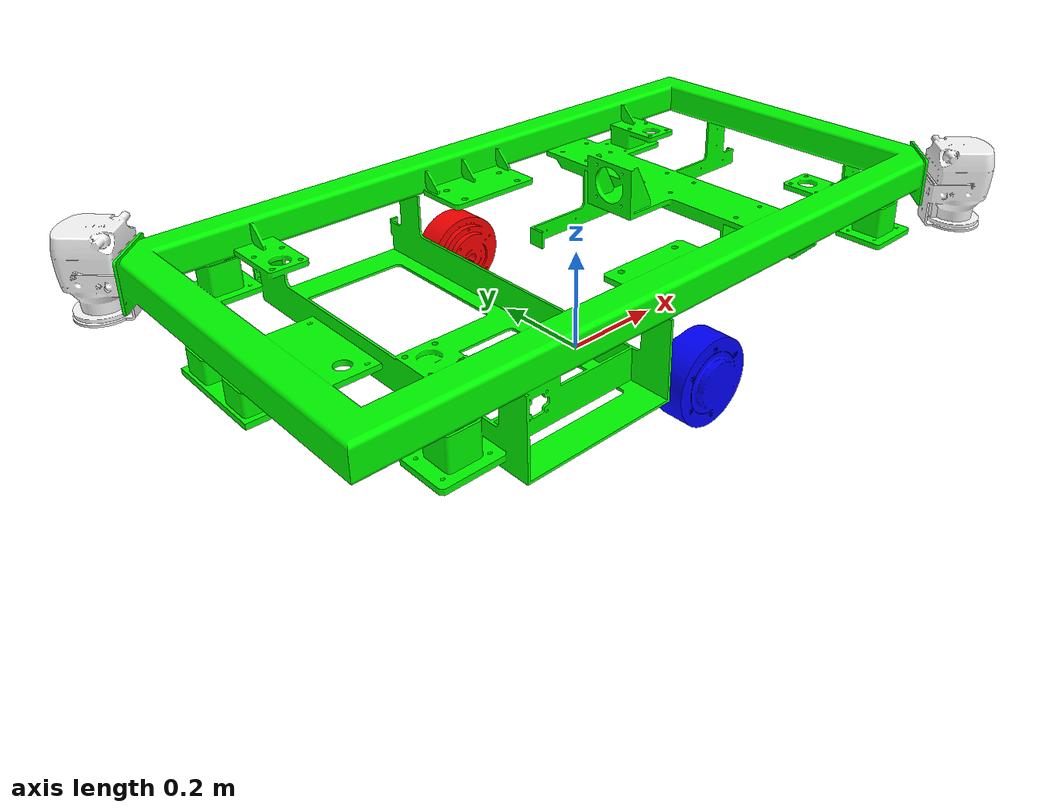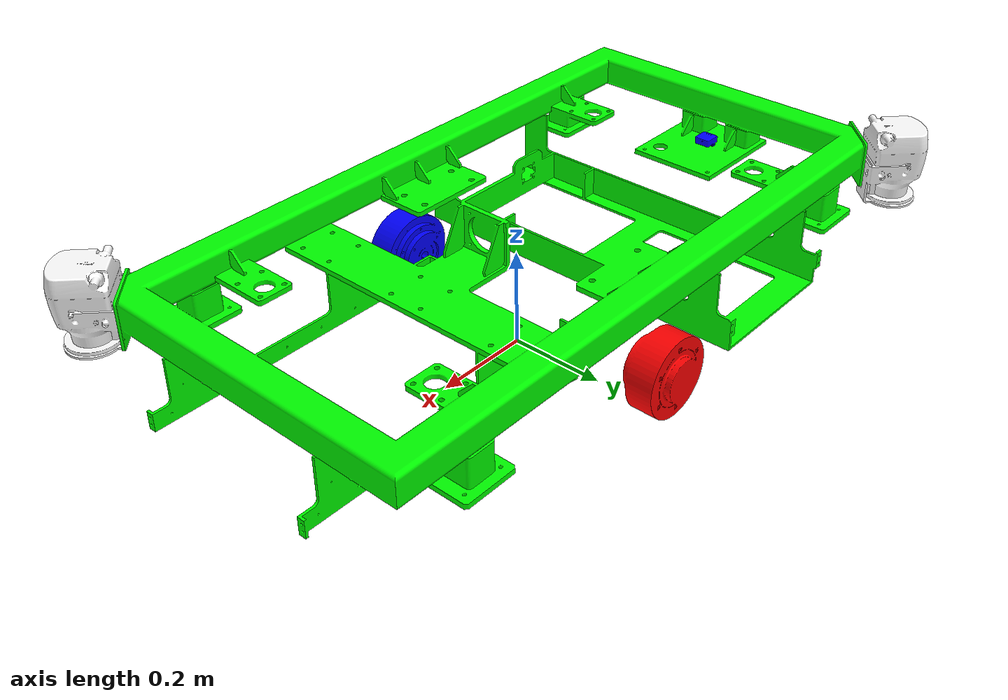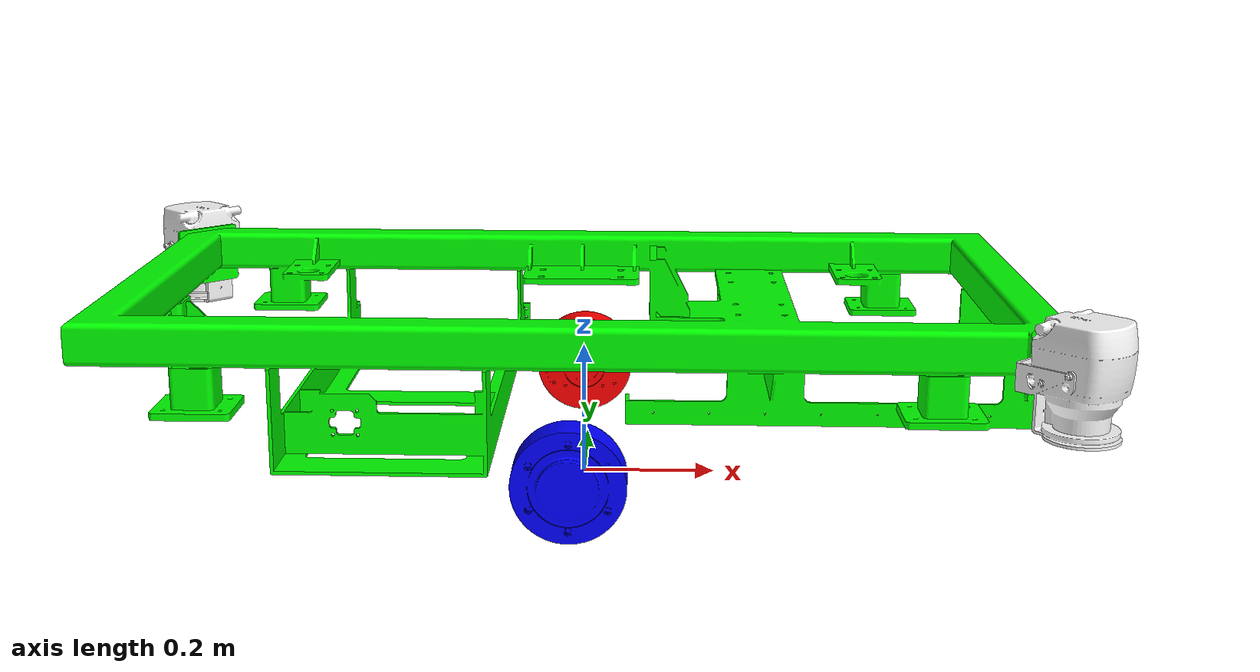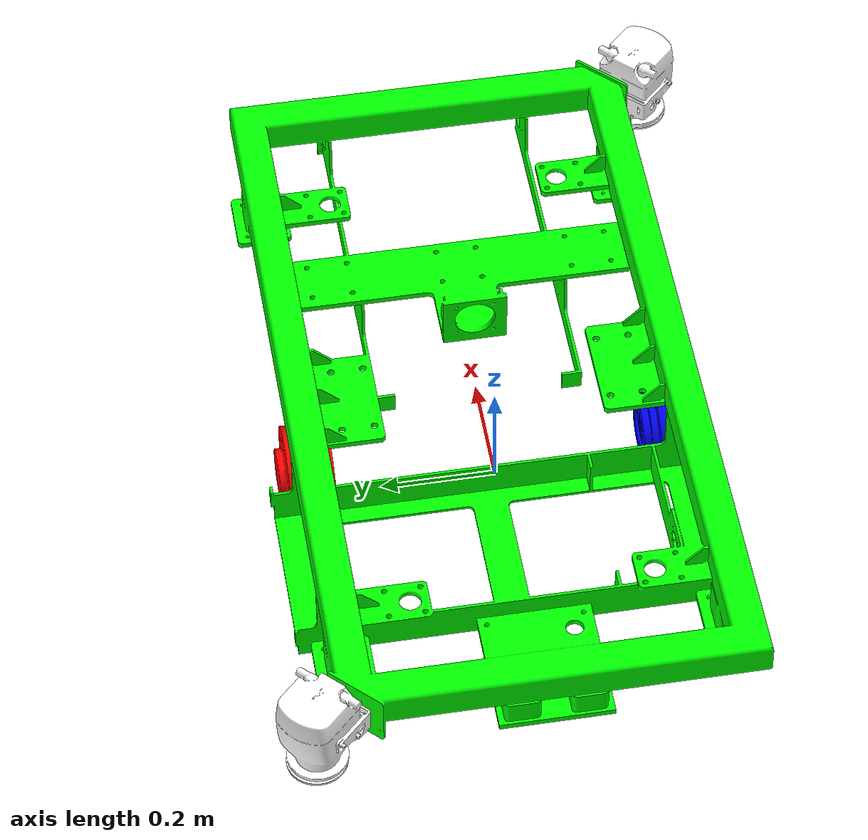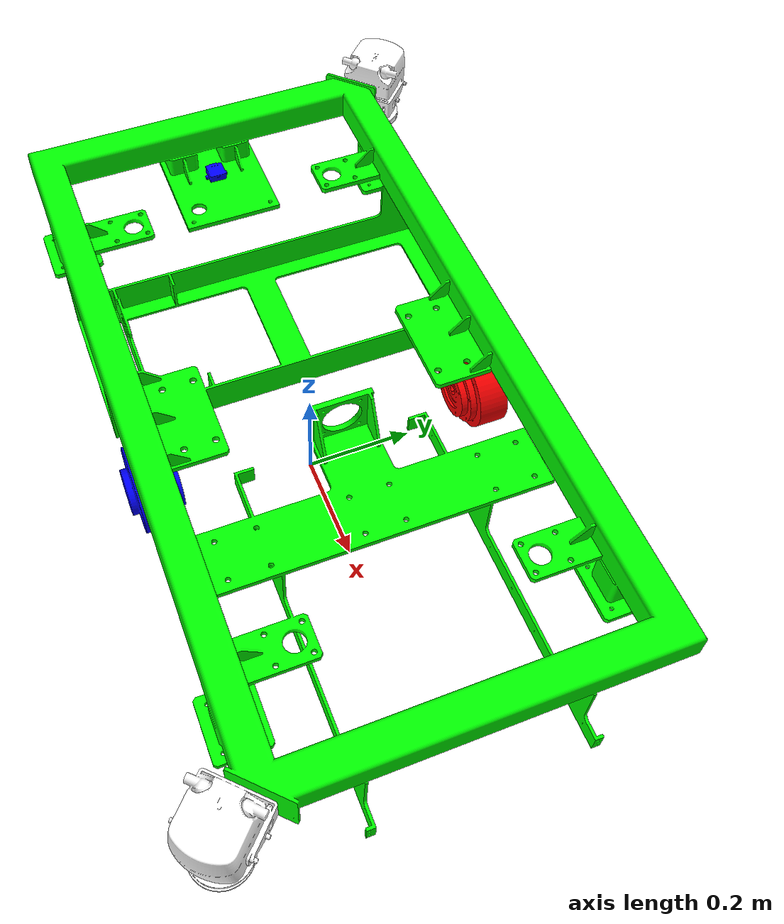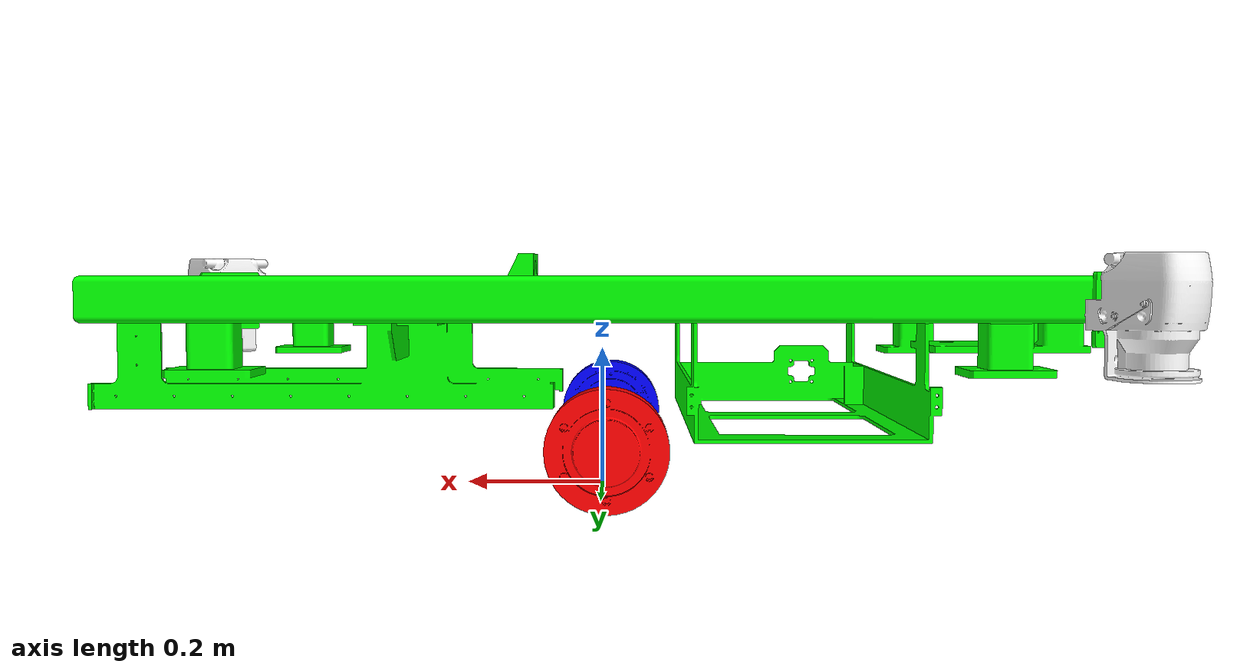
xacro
<?xml version="1.0"?>
<robot xmlns:xacro="http://www.ros.org/wiki/xacro" name="prototype_vehicle">

	<xacro:arg name="tf_prefix" default="" />
	<xacro:property name="tf_prefix_" value="$(arg tf_prefix)" />
	<xacro:if value="${tf_prefix_ == ''}">
		<xacro:property name="prefix" value="" />
	</xacro:if>
	<xacro:unless value="${tf_prefix_ == ''}">
		<xacro:property name="prefix" value="${tf_prefix_}/" />
	</xacro:unless>

    <joint name="imu_joint" type="fixed">
        <parent link="base_link" />
        <child link="imu_link" />
        <origin xyz="0.019 0.6 0.116" rpy="0 0 3.14" />
    </joint>
	<xacro:include filename="$(find prototype_vehicle)/xacro/common_properties.xacro" />
	<xacro:include filename="$(find prototype_vehicle)/xacro/base_footprint.xacro" />
	<xacro:include filename="$(find prototype_vehicle)/xacro/base.xacro" />
	<xacro:include filename="$(find prototype_vehicle)/xacro/right_wheel.xacro" />
	<xacro:include filename="$(find prototype_vehicle)/xacro/left_wheel.xacro" />
	<xacro:include filename="$(find prototype_vehicle)/xacro/front_lidar.xacro" />
	<xacro:include filename="$(find prototype_vehicle)/xacro/back_lidar.xacro" />
	<xacro:include filename="$(find prototype_vehicle)/xacro/imu.xacro" />

</robot>

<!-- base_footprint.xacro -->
<robot xmlns:xacro="http://www.ros.org/wiki/xacro">

	<link name="base_footprint">
		<visual>
			<origin xyz="0 0 0" rpy="0 0 0" />
			<geometry>
				<cylinder radius="0.0" length="0.0" />
			</geometry>
			<material name="Yellow">
				<color rgba="1 1 0 1" />
			</material>
		</visual>
		<collision>
			<origin xyz="0 0 0" rpy="0 0 0" />
			<geometry>
				<cylinder radius="0.0" length="0.0" />
			</geometry>
		</collision>
	</link>

</robot>

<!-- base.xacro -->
<robot xmlns:xacro="http://www.ros.org/wiki/xacro">

    <xacro:property name="base_link_origin" value="-0.5 -0.7 0" />
    <xacro:property name="base_mass" value="187.283" />
    <xacro:property name="base_Ixx" value="10.152" />
    <xacro:property name="base_Ixy" value="6.503" />
    <xacro:property name="base_Ixz" value="-0.039" />
    <xacro:property name="base_Iyx" value="6.503" />
    <xacro:property name="base_Iyy" value="37.815" />
    <xacro:property name="base_Iyz" value="0.035" />
    <xacro:property name="base_Izx" value="-0.039" />
    <xacro:property name="base_Izy" value="0.035" />
    <xacro:property name="base_Izz" value="46.295" />

    <joint name="base_joint" type="fixed">
        <parent link="base_footprint" />
        <child link="base_link" />
        <origin xyz="0 0 0.1" rpy="0 0 1.57" />
    </joint>

    <link name="base_link">
        <visual>
            <origin xyz="${base_link_origin}" rpy="0 0 0" />
            <geometry>
                <mesh filename="package://prototype_vehicle/mesh/Single/SASE.STL" scale="0.001 0.001 0.001" />
            </geometry>
            <material name="Yellow">
                <color rgba="0 1 0 1" />
            </material>
        </visual>
        <collision>
            <origin xyz="${base_link_origin}" rpy="0 0 0" />
            <geometry>
                <mesh filename="package://prototype_vehicle/mesh/Single/SASE.STL" scale="0.001 0.001 0.001" />
            </geometry>
        </collision>
        <inertial>
            <origin xyz="0 0 0" rpy="0 0 0" />
            <mass value="${base_mass}" />
            <inertia ixx="${base_Ixx}" ixy="${base_Ixy}" ixz="${base_Ixz}" iyx="${base_Iyx}" iyy="${base_Iyy}" iyz="${base_Iyz}" izx="${base_Izx}" izy="${base_Izy}" izz="${base_Izz}" />
        </inertial>
    </link>

    <gazebo reference="base_link">
        <material>Gazebo/Yellow</material>
    </gazebo>

</robot>

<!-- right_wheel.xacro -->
<robot xmlns:xacro="http://www.ros.org/wiki/xacro">

    <xacro:property name="right_wheel_link_origin" value="0 0 0" />
    <xacro:property name="right_wheel_mass" value="11.162" />
    <xacro:property name="right_wheel_Ixx" value="0.021" />
    <xacro:property name="right_wheel_Ixy" value="0" />
    <xacro:property name="right_wheel_Ixz" value="0" />
    <xacro:property name="right_wheel_Iyx" value="0" />
    <xacro:property name="right_wheel_Iyy" value="0.032" />
    <xacro:property name="right_wheel_Iyz" value="${-1.185 * 0.000001}" />
    <xacro:property name="right_wheel_Izx" value="0" />
    <xacro:property name="right_wheel_Izy" value="${-1.185 * 0.000001}" />
    <xacro:property name="right_wheel_Izz" value="0.021" />

    <joint name="right_wheel_joint" type="continuous">
        <origin xyz="-0.3 0.01 -0.015" rpy="0 0 -1.57" />
        <parent link="base_link" />
        <child link="right_wheel_link" />
        <axis xyz="0 1 0" />
        <limit effort="100" velocity="20.0" />
    </joint>

    <link name="right_wheel_link">
        <visual>
            <origin xyz="${right_wheel_link_origin}" rpy="0 0 0" />
            <geometry>
                <mesh filename="package://prototype_vehicle/mesh/Single/Wheel.stl" scale="1 1 1" />
            </geometry>
            <material name="Blue">
                <color rgba="0 0 1 1" />
            </material>
        </visual>
        <collision>
            <origin xyz="${right_wheel_link_origin}" rpy="0 0 0" />
            <geometry>
                <mesh filename="package://prototype_vehicle/mesh/Single/Wheel.stl" scale="1 1 1" />
            </geometry>
        </collision>
        <inertial>
            <origin xyz="0 0 0" rpy="0 0 0" />
            <mass value="${right_wheel_mass}" />
            <inertia ixx="${right_wheel_Ixx}" ixy="${right_wheel_Ixy}" ixz="${right_wheel_Ixz}" iyx="${right_wheel_Iyx}" iyy="${right_wheel_Iyy}" iyz="${right_wheel_Iyz}" izx="${right_wheel_Izx}" izy="${right_wheel_Izy}" izz="${right_wheel_Izz}" />
        </inertial>
    </link>

    <gazebo reference="right_wheel_link">
        <material>Gazebo/Blue</material>
    </gazebo>

</robot>

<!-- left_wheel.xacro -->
<robot xmlns:xacro="http://www.ros.org/wiki/xacro">
    <xacro:property name="left_wheel_link_origin" value="0 0 0" />
    <xacro:property name="left_wheel_mass" value="11.162" />
    <xacro:property name="left_wheel_Ixx" value="0.021" />
    <xacro:property name="left_wheel_Ixy" value="${-1.185 * 0.000001}" />
    <xacro:property name="left_wheel_Ixz" value="0" />
    <xacro:property name="left_wheel_Iyx" value="${-1.185 * 0.000001}" />
    <xacro:property name="left_wheel_Iyy" value="0.032" />
    <xacro:property name="left_wheel_Iyz" value="0" />
    <xacro:property name="left_wheel_Izx" value="0" />
    <xacro:property name="left_wheel_Izy" value="0" />
    <xacro:property name="left_wheel_Izz" value="0.021" />

    <joint name="left_wheel_joint" type="continuous">
        <origin xyz="0.335 0.01 -0.015" rpy="0 0 1.57" />
        <parent link="base_link" />
        <child link="left_wheel_link" />
        <axis xyz="0 1 0" />
        <limit effort="100" velocity="20.0" />
    </joint>

    <link name="left_wheel_link">
        <visual>
            <origin xyz="${left_wheel_link_origin}" rpy="0 0 0" />
            <geometry>
                <mesh filename="package://prototype_vehicle/mesh/Single/Wheel.stl" scale="1 1 1" />
            </geometry>
            <material name="Red">
                <color rgba="1 0 0 1" />
            </material>
        </visual>
        <collision>
            <origin xyz="${left_wheel_link_origin}" rpy="0 0 0" />
            <geometry>
                <mesh filename="package://prototype_vehicle/mesh/Single/Wheel.stl" scale="1 1 1" />
            </geometry>
        </collision>
        <inertial>
            <origin xyz="0 0 0" rpy="0 0 0" />
            <mass value="${left_wheel_mass}" />
            <inertia ixx="${left_wheel_Ixx}" ixy="${left_wheel_Ixy}" ixz="${left_wheel_Ixz}" iyx="${left_wheel_Iyx}" iyy="${left_wheel_Iyy}" iyz="${left_wheel_Iyz}" izx="${left_wheel_Izx}" izy="${left_wheel_Izy}" izz="${left_wheel_Izz}" />
        </inertial>
    </link>

    <gazebo reference="left_wheel_link">
        <material>Gazebo/Red</material>
    </gazebo>

</robot>

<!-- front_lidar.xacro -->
<robot xmlns:xacro="http://www.ros.org/wiki/xacro" >

    <joint name="front_lidar_joint" type="fixed">
        <origin xyz="-0.38 -0.67 0.1" rpy="3.14 0 -2.355"/>
        <parent link="base_link"/>
        <child link="front_lidar_link"/>
    </joint>

    <link name="front_lidar_link">
        <visual>
            <origin xyz="0.05 -0.22 -0.22" rpy="1.57 0 3.14"/>
            <geometry>
                <mesh filename="package://prototype_vehicle/mesh/Single/LIDAR.STL" scale="0.001 0.001 0.001" />
            </geometry>
            <material name="White">
                <color rgba="1 1 1 1"/>
            </material>
        </visual>
        <collision>
            <origin xyz="0 0 0" rpy="0 0 0"/>
            <geometry>
                <mesh filename="package://prototype_vehicle/mesh/Single/LIDAR.STL" scale="0.001 0.001 0.001" />
            </geometry>
        </collision>
        <inertial>
            <origin xyz="0 0 0" rpy="0 0 0"/>
            <mass value="0.01" />
            <inertia ixx="0" ixy="0.0" ixz="0.0" iyy="0" iyz="0.0" izz="0" />
        </inertial>
    </link>

    <gazebo reference="front_lidar_link">
        <sensor type="ray" name="front_lidar_sensor">
            <pose>0 0 0 0 0 0</pose>
            <visualize>false</visualize>
            <update_rate>50</update_rate>
            <ray>
                <scan>
                    <horizontal>
                        <samples>2000</samples>
                        <resolution>1</resolution>
                        <min_angle>-1.57079632679</min_angle>
                        <max_angle>3.14159265359</max_angle>
                    </horizontal>
                </scan>
                <range>
                    <min>0.15</min>
                    <max>12</max>
                    <resolution>0.1</resolution>
                </range>
                <noise>
                    <type>gaussian</type>
                    <mean>0.0</mean>
                    <stddev>0.01</stddev>
                </noise>
            </ray>
            <plugin name="gazebo_ros_head_rplidar_controller" filename="libgazebo_ros_laser.so">
                <topicName>/scan_front_laser</topicName>
                <frameName>front_lidar_link</frameName>
            </plugin>
        </sensor>
    </gazebo>

</robot>

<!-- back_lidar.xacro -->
<robot xmlns:xacro="http://www.ros.org/wiki/xacro" >

    <joint name="back_lidar_joint" type="fixed">
        <origin xyz="0.41 0.7 0.1" rpy="3.14 0 0.785"/>
        <parent link="base_link"/>
        <child link="back_lidar_link"/>
    </joint>
    <link name="back_lidar_link">
        <visual>
            <origin xyz="0.05 -0.22 -0.22" rpy="1.57 0 3.14"/>
            <geometry>
                <mesh filename="package://prototype_vehicle/mesh/Single/LIDAR.STL" scale="0.001 0.001 0.001" />
            </geometry>
            <material name="White">
                <color rgba="1 1 1 1"/>
            </material>
        </visual>
        <collision>
            <origin xyz="0 0 0" rpy="0 0 0"/>
            <geometry>
                <mesh filename="package://prototype_vehicle/mesh/Single/LIDAR.STL" scale="0.001 0.001 0.001" />
            </geometry>
        </collision>
        <inertial>
            <origin xyz="0 0 0" rpy="0 0 0"/>
            <mass value="0.01" />
            <inertia ixx="0" ixy="0.0" ixz="0.0" iyy="0" iyz="0.0" izz="0" />
        </inertial>
    </link>

    <gazebo reference="back_lidar_link">
        <sensor type="ray" name="back_lidar_sensor">
            <pose>0 0 0 0 0 0</pose>
            <visualize>false</visualize>
            <update_rate>50</update_rate>
            <ray>
                <scan>
                    <horizontal>
                        <samples>2000</samples>
                        <resolution>1</resolution>
                        <min_angle>-1.57079632679</min_angle>
                        <max_angle>3.14159265359</max_angle>
                    </horizontal>
                </scan>
                <range>
                    <min>0.15</min>
                    <max>12</max>
                    <resolution>0.1</resolution>
                </range>
                <noise>
                    <type>gaussian</type>
                    <mean>0.0</mean>
                    <stddev>0.01</stddev>
                </noise>
            </ray>
            <plugin name="gazebo_ros_head_rplidar_controller" filename="libgazebo_ros_laser.so">
                <topicName>/scan_back_laser</topicName>
                <frameName>back_lidar_link</frameName>
            </plugin>
        </sensor>
    </gazebo>

</robot>

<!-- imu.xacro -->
<robot xmlns:xacro="http://www.ros.org/wiki/xacro">

    <link name="imu_link">
        <visual>
            <origin xyz="0.0165 0.004 -0.0365" rpy="0 0 0" />
            <geometry>
                <mesh filename="package://prototype_vehicle/mesh/Single/IMU.STL" scale="0.001 0.001 0.001" />
            </geometry>
            <material name="Blue">
                <color rgba="0 0 1 1" />
            </material>
        </visual>
        <collision>
            <origin xyz="0.0165 0.004 -0.0365" rpy="0 0 0" />
            <geometry>
                <mesh filename="package://prototype_vehicle/mesh/Single/IMU.STL" scale="0.001 0.001 0.001" />
            </geometry>
        </collision>
        <inertial>
            <origin xyz="0 0 0" rpy="0 0 0" />
            <mass value="0" />
            <inertia ixx="0.0" ixy="0.0" ixz="0.0" iyx="0.0" iyy="0.0" iyz="0.0" izx="0.0" izy="0.0" izz="0.0" />
        </inertial>
    </link>

    <gazebo reference="imu_link">
        <material>Gazebo/Blue</material>
        <mu1 value="0.01" />
        <mu2 value="0.01" />
        <kp value="10000000.0" />
        <kd value="1.0" />
        <minDepth>0.01</minDepth>
    </gazebo>

    <gazebo reference="imu_link">
        <gravity>true</gravity>
        <sensor name="imu_sensor" type="imu">
            <always_on>true</always_on>
            <update_rate>50</update_rate>
            <visualize>false</visualize>
            <topic>imu</topic>
            <plugin filename="libgazebo_ros_imu_sensor.so" name="imu_plugin">
                <topicName>imu</topicName>
                <bodyName>imu_link</bodyName>
                <updateRateHZ>50.0</updateRateHZ>
                <gaussianNoise>0.0</gaussianNoise>
                <xyzOffset>0 0 0</xyzOffset>
                <rpyOffset>0 0 0</rpyOffset>
                <frameName>imu_link</frameName>
                <initialOrientationAsReference>false</initialOrientationAsReference>
            </plugin>
            <pose>0 0 0 0 0 0</pose>
        </sensor>
    </gazebo>

</robot>
